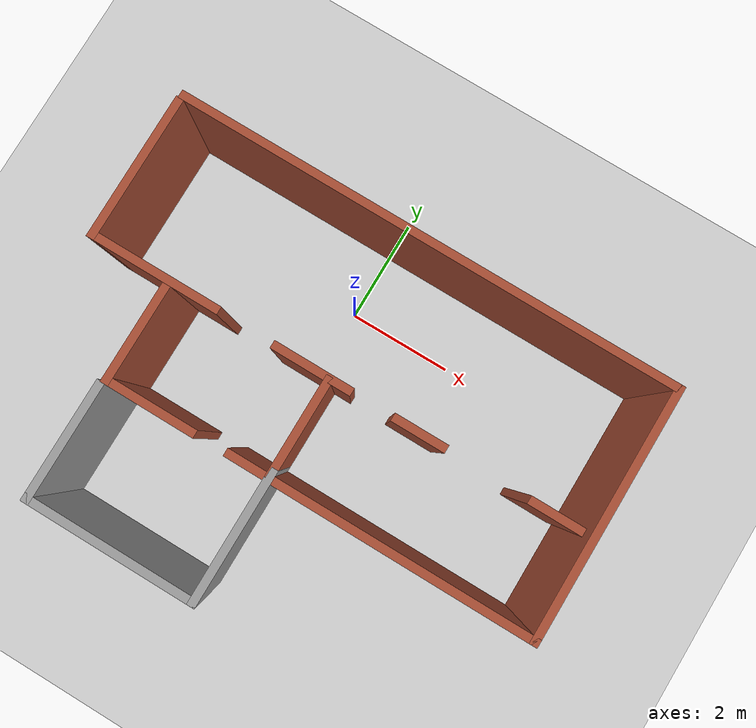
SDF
<sdf version="1.6">
 <world name="default">
  <light name="sun" type="directional">
   <pose>0 0 10 0 -0 0</pose>
   <diffuse>0.8 0.8 0.8 1</diffuse>
   <specular>0.2 0.2 0.2 1</specular>
   <attenuation>
    <range>1000</range>
    <constant>0.9</constant>
    <linear>0.01</linear>
    <quadratic>0.001</quadratic>
   </attenuation>
   <direction>-0.5 0.1 -0.9</direction>
  </light>
  <model name="ground_plane">
   <static>1</static>
   <link name="link">
    <collision name="collision">
     <geometry><plane><normal>0 0 1</normal><size>100 100</size></plane></geometry>
     <surface>
      <contact><collide_bitmask>65535</collide_bitmask></contact>
      <friction><ode><mu>100</mu><mu2>50</mu2></ode></friction>
     </surface>
    </collision>
    <visual name="visual">
     <cast_shadows>0</cast_shadows>
     <geometry><plane><normal>0 0 1</normal><size>100 100</size></plane></geometry>
     <material>
      <script><uri>file://media/materials/scripts/gazebo.material</uri><name>Gazebo/Grey</name></script>
     </material>
    </visual>
   </link>
  </model>
  <gravity>0 0 -9.8</gravity>
  <magnetic_field>6e-06 2.3e-05 -4.2e-05</magnetic_field>
  <atmosphere type="adiabatic"/>
  <physics name="default_physics" default="0" type="ode">
   <max_step_size>0.001</max_step_size>
   <real_time_factor>1</real_time_factor>
   <real_time_update_rate>1000</real_time_update_rate>
  </physics>
  <scene><ambient>0.4 0.4 0.4 1</ambient><background>0.7 0.7 0.7 1</background><shadows>1</shadows></scene>
  <spherical_coordinates>
   <surface_model>EARTH_WGS84</surface_model>
   <latitude_deg>0</latitude_deg>
   <longitude_deg>0</longitude_deg>
   <elevation>0</elevation>
   <heading_deg>0</heading_deg>
  </spherical_coordinates>
  <model name="home_model_2">
   <pose>-1.17772 -4.16151 0 0 -0 0</pose>
   <link name="Wall_0">
    <collision name="Wall_0_Collision">
     <geometry><box><size>2.25 0.15 2.5</size></box></geometry>
     <pose>0 0 1.25 0 -0 0</pose>
    </collision>
    <visual name="Wall_0_Visual">
     <pose>0 0 1.25 0 -0 0</pose>
     <geometry><box><size>2.25 0.15 2.5</size></box></geometry>
     <material>
      <script><uri>file://media/materials/scripts/gazebo.material</uri><name>Gazebo/Grey</name></script>
      <ambient>1 1 1 1</ambient>
     </material>
     <meta><layer>0</layer></meta>
    </visual>
    <pose>-1.55 -0.293159 0 0 -0 -1.5708</pose>
   </link>
   <link name="Wall_1">
    <collision name="Wall_1_Collision">
     <geometry><box><size>3.25 0.15 2.5</size></box></geometry>
     <pose>0 0 1.25 0 -0 0</pose>
    </collision>
    <visual name="Wall_1_Visual">
     <pose>0 0 1.25 0 -0 0</pose>
     <geometry><box><size>3.25 0.15 2.5</size></box></geometry>
     <material>
      <script><uri>file://media/materials/scripts/gazebo.material</uri><name>Gazebo/Grey</name></script>
      <ambient>1 1 1 1</ambient>
     </material>
     <meta><layer>0</layer></meta>
    </visual>
    <pose>0 -1.34316 0 0 -0 0</pose>
   </link>
   <link name="Wall_2">
    <collision name="Wall_2_Collision">
     <geometry><box><size>2.5 0.15 2.5</size></box></geometry>
     <pose>0 0 1.25 0 -0 0</pose>
    </collision>
    <visual name="Wall_2_Visual">
     <pose>0 0 1.25 0 -0 0</pose>
     <geometry><box><size>2.5 0.15 2.5</size></box></geometry>
     <material>
      <script><uri>file://media/materials/scripts/gazebo.material</uri><name>Gazebo/Grey</name></script>
      <ambient>1 1 1 1</ambient>
     </material>
     <meta><layer>0</layer></meta>
    </visual>
    <pose>1.55 -0.168159 0 0 -0 1.5708</pose>
   </link>
   <static>1</static>
  </model>
  <model name="lab_2_home">
   <pose>0.550139 -0.720367 0 0 -0 0</pose>
   <link name="Wall_2">
    <collision name="Wall_2_Collision">
     <geometry><box><size>2.75 0.15 2.5</size></box></geometry>
     <pose>0 0 1.25 0 -0 0</pose>
    </collision>
    <visual name="Wall_2_Visual">
     <pose>0 0 1.25 0 -0 0</pose>
     <geometry><box><size>2.75 0.15 2.5</size></box></geometry>
     <material>
      <script><uri>file://media/materials/scripts/gazebo.material</uri><name>Gazebo/Bricks</name></script>
      <ambient>1 1 1 1</ambient>
     </material>
     <meta><layer>0</layer></meta>
    </visual>
    <pose>-4.69204 0.627029 0 0 -0 -1.5708</pose>
   </link>
   <link name="Wall_22">
    <collision name="Wall_22_Collision">
     <geometry><box><size>5.75 0.15 2.5</size></box></geometry>
     <pose>0 0 1.25 0 -0 0</pose>
    </collision>
    <visual name="Wall_22_Visual">
     <pose>0 0 1.25 0 -0 0</pose>
     <geometry><box><size>5.75 0.15 2.5</size></box></geometry>
     <material>
      <script><uri>file://media/materials/scripts/gazebo.material</uri><name>Gazebo/Bricks</name></script>
      <ambient>1 1 1 1</ambient>
     </material>
     <meta><layer>0</layer></meta>
    </visual>
    <pose>1.89204 -2.53613 0 0 -0 0</pose>
   </link>
   <link name="Wall_28">
    <collision name="Wall_28_Collision">
     <geometry><box><size>1.5 0.15 2.5</size></box></geometry>
     <pose>0 0 1.25 0 -0 0</pose>
    </collision>
    <visual name="Wall_28_Visual">
     <pose>0 0 1.25 0 -0 0</pose>
     <geometry><box><size>1.5 0.15 2.5</size></box></geometry>
     <material>
      <script><uri>file://media/materials/scripts/gazebo.material</uri><name>Gazebo/Bricks</name></script>
      <ambient>1 1 1 1</ambient>
     </material>
     <meta><layer>0</layer></meta>
    </visual>
    <pose>-0.501593 -0.688978 0 0 -0 0</pose>
   </link>
   <link name="Wall_3">
    <collision name="Wall_3_Collision">
     <geometry><box><size>2.5 0.15 2.5</size></box></geometry>
     <pose>0 0 1.25 0 -0 0</pose>
    </collision>
    <visual name="Wall_3_Visual">
     <pose>0 0 1.25 0 -0 0</pose>
     <geometry><box><size>2.5 0.15 2.5</size></box></geometry>
     <material>
      <script><uri>file://media/materials/scripts/gazebo.material</uri><name>Gazebo/Bricks</name></script>
      <ambient>1 1 1 1</ambient>
     </material>
     <meta><layer>0</layer></meta>
    </visual>
    <pose>-3.51704 -0.672971 0 0 -0 0</pose>
   </link>
   <link name="Wall_30">
    <collision name="Wall_30_Collision">
     <geometry><box><size>1.9 0.15 2.5</size></box></geometry>
     <pose>0 0 1.25 0 -0 0</pose>
    </collision>
    <visual name="Wall_30_Visual">
     <pose>0 0 1.25 0 -0 0</pose>
     <geometry><box><size>1.9 0.15 2.5</size></box></geometry>
     <material>
      <script><uri>file://media/materials/scripts/gazebo.material</uri><name>Gazebo/Bricks</name></script>
      <ambient>1 1 1 1</ambient>
     </material>
     <meta><layer>0</layer></meta>
    </visual>
    <pose>-0.178544 -1.60047 0 0 -0 -1.5708</pose>
   </link>
   <link name="Wall_34">
    <collision name="Wall_34_Collision">
     <geometry><box><size>1 0.15 2.5</size></box></geometry>
     <pose>0 0 1.25 0 -0 0</pose>
    </collision>
    <visual name="Wall_34_Visual">
     <pose>0 0 1.25 0 -0 0</pose>
     <geometry><box><size>1 0.15 2.5</size></box></geometry>
     <material>
      <script><uri>file://media/materials/scripts/gazebo.material</uri><name>Gazebo/Bricks</name></script>
      <ambient>1 1 1 1</ambient>
     </material>
     <meta><layer>0</layer></meta>
    </visual>
    <pose>1.50151 -0.686883 0 0 -0 0</pose>
   </link>
   <link name="Wall_44">
    <collision name="Wall_44_Collision">
     <geometry><box><size>1 0.15 2.5</size></box></geometry>
     <pose>0 0 1.25 0 -0 0</pose>
    </collision>
    <visual name="Wall_44_Visual">
     <pose>0 0 1.25 0 -0 0</pose>
     <geometry><box><size>1 0.15 2.5</size></box></geometry>
     <material>
      <script><uri>file://media/materials/scripts/gazebo.material</uri><name>Gazebo/Bricks</name></script>
      <ambient>1 1 1 1</ambient>
     </material>
     <meta><layer>0</layer></meta>
    </visual>
    <pose>4.01269 -0.691347 0 0 -0 0</pose>
   </link>
   <link name="Wall_46">
    <collision name="Wall_46_Collision">
     <geometry><box><size>4.75 0.15 2.5</size></box></geometry>
     <pose>0 0 1.25 0 -0 0</pose>
    </collision>
    <visual name="Wall_46_Visual">
     <pose>0 0 1.25 0 -0 0</pose>
     <geometry><box><size>4.75 0.15 2.5</size></box></geometry>
     <material>
      <script><uri>file://media/materials/scripts/gazebo.material</uri><name>Gazebo/Bricks</name></script>
      <ambient>1 1 1 1</ambient>
     </material>
     <meta><layer>0</layer></meta>
    </visual>
    <pose>4.69204 -0.236128 0 0 -0 1.5708</pose>
   </link>
   <link name="Wall_48">
    <collision name="Wall_48_Collision">
     <geometry><box><size>9.5 0.15 2.5</size></box></geometry>
     <pose>0 0 1.25 0 -0 0</pose>
    </collision>
    <visual name="Wall_48_Visual">
     <pose>0 0 1.25 0 -0 0</pose>
     <geometry><box><size>9.5 0.15 2.5</size></box></geometry>
     <material>
      <script><uri>file://media/materials/scripts/gazebo.material</uri><name>Gazebo/Bricks</name></script>
      <ambient>1 1 1 1</ambient>
     </material>
     <meta><layer>0</layer></meta>
    </visual>
    <pose>0.017044 2.06387 0 0 -0 3.14159</pose>
   </link>
   <link name="Wall_7">
    <collision name="Wall_7_Collision">
     <geometry><box><size>2 0.15 2.5</size></box></geometry>
     <pose>0 0 1.25 0 -0 0</pose>
    </collision>
    <visual name="Wall_7_Visual">
     <pose>0 0 1.25 0 -0 0</pose>
     <geometry><box><size>2 0.15 2.5</size></box></geometry>
     <material>
      <script><uri>file://media/materials/scripts/gazebo.material</uri><name>Gazebo/Bricks</name></script>
      <ambient>1 1 1 1</ambient>
     </material>
     <meta><layer>0</layer></meta>
    </visual>
    <pose>-3.21684 -1.62553 0 0 -0 -1.5708</pose>
   </link>
   <link name="Wall_8">
    <collision name="Wall_8_Collision">
     <geometry><box><size>1.75 0.15 2.5</size></box></geometry>
     <pose>0 0 1.25 0 -0 0</pose>
    </collision>
    <visual name="Wall_8_Visual">
     <pose>0 0 1.25 0 -0 0</pose>
     <geometry><box><size>1.75 0.15 2.5</size></box></geometry>
     <material>
      <script><uri>file://media/materials/scripts/gazebo.material</uri><name>Gazebo/Bricks</name></script>
      <ambient>1 1 1 1</ambient>
     </material>
     <meta><layer>0</layer></meta>
    </visual>
    <pose>-2.41357 -2.55053 0 0 -0 0</pose>
   </link>
   <static>1</static>
  </model>
 </world>
</sdf>
